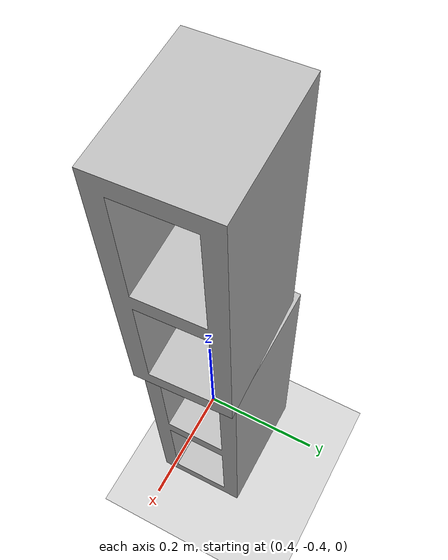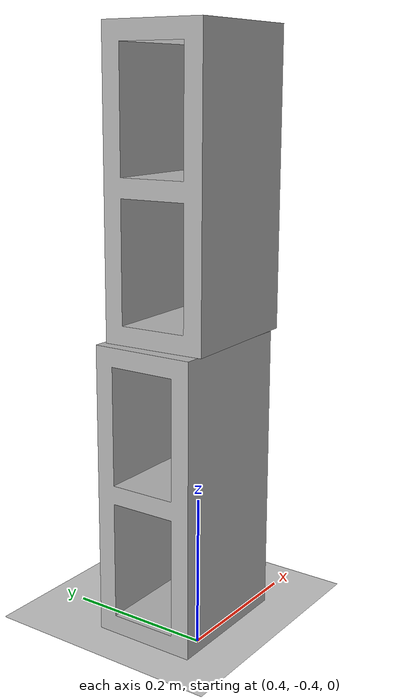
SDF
<sdf version="1.6">
 <world name="default">
  <light name="sun" type="directional">
   <pose>0 0 10 0 -0 0</pose>
   <diffuse>0.8 0.8 0.8 1</diffuse>
   <specular>0.2 0.2 0.2 1</specular>
   <attenuation>
    <range>1000</range>
    <constant>0.9</constant>
    <linear>0.01</linear>
    <quadratic>0.001</quadratic>
   </attenuation>
   <direction>-0.5 0.1 -0.9</direction>
  </light>
  <physics name="dart_1ms" default="1" type="dart">
   <max_step_size>0.001</max_step_size>
   <real_time_factor>1</real_time_factor>
   <real_time_update_rate>1000</real_time_update_rate>
   <dart><solver><solver_type>pgs</solver_type></solver></dart>
  </physics>
  <physics name="dart_2ms" default="0" type="dart">
   <max_step_size>0.002</max_step_size>
   <real_time_factor>1</real_time_factor>
   <real_time_update_rate>500</real_time_update_rate>
   <dart><solver><solver_type>pgs</solver_type></solver></dart>
  </physics>
  <physics name="dart_3ms" default="0" type="dart">
   <max_step_size>0.003</max_step_size>
   <real_time_factor>1</real_time_factor>
   <real_time_update_rate>333</real_time_update_rate>
   <dart><solver><solver_type>pgs</solver_type></solver></dart>
  </physics>
  <physics name="ode_1ms" default="0" type="ode">
   <max_step_size>0.001</max_step_size>
   <real_time_factor>1</real_time_factor>
   <real_time_update_rate>1000</real_time_update_rate>
  </physics>
  <physics name="ode_2ms" default="0" type="ode">
   <max_step_size>0.002</max_step_size>
   <real_time_factor>1</real_time_factor>
   <real_time_update_rate>500</real_time_update_rate>
  </physics>
  <physics name="ode_3ms" default="0" type="ode">
   <max_step_size>0.003</max_step_size>
   <real_time_factor>1</real_time_factor>
   <real_time_update_rate>333</real_time_update_rate>
  </physics>
  <model name="ground_plane">
   <static>1</static>
   <link name="link">
    <collision name="collision">
     <geometry><plane><normal>0 0 1</normal><size>100 100</size></plane></geometry>
     <surface>
      <contact><collide_bitmask>65535</collide_bitmask></contact>
      <friction><ode><mu>100</mu><mu2>50</mu2></ode></friction>
     </surface>
    </collision>
    <visual name="visual">
     <cast_shadows>0</cast_shadows>
     <geometry><plane><normal>0 0 1</normal><size>100 100</size></plane></geometry>
     <material>
      <script><uri>file://media/materials/scripts/gazebo.material</uri><name>Gazebo/Grey</name></script>
     </material>
    </visual>
   </link>
  </model>
  <gravity>0 0 -9.8</gravity>
  <magnetic_field>6e-06 2.3e-05 -4.2e-05</magnetic_field>
  <atmosphere type="adiabatic"/>
  <scene><ambient>0.4 0.4 0.4 1</ambient><background>0.7 0.7 0.7 1</background><shadows>1</shadows></scene>
  <spherical_coordinates>
   <surface_model>EARTH_WGS84</surface_model>
   <latitude_deg>0</latitude_deg>
   <longitude_deg>0</longitude_deg>
   <elevation>0</elevation>
   <heading_deg>0</heading_deg>
  </spherical_coordinates>
  <model name="cinder_block_2">
   <static>1</static>
   <link name="link">
    <inertial>
     <pose>0 0 0.071438 0 -0 0</pose>
     <mass>5</mass>
     <inertia>
      <ixx>0.06908</ixx>
      <ixy>0</ixy>
      <iyy>0.028705</iyy>
      <ixz>0</ixz>
      <iyz>0</iyz>
      <izz>0.073708</izz>
     </inertia>
    </inertial>
    <visual name="visual">
     <geometry><mesh><uri>model://cinder_block_2/meshes/cinder_block.dae</uri></mesh></geometry>
    </visual>
    <collision name="top">
     <pose>0 0 0.130175 0 -0 0</pose>
     <geometry><box><size>0.19368 0.396875 0.0254</size></box></geometry>
     <surface>
      <contact><ode><max_vel>0.1</max_vel><min_depth>0.001</min_depth></ode></contact>
      <friction><ode><mu>1</mu><mu2>1</mu2></ode></friction>
     </surface>
    </collision>
    <collision name="bottom">
     <pose>0 0 0.0127 0 -0 0</pose>
     <geometry><box><size>0.19368 0.396875 0.0254</size></box></geometry>
     <surface>
      <contact><ode><max_vel>0.1</max_vel><min_depth>0.001</min_depth></ode></contact>
      <friction><ode><mu>1</mu><mu2>1</mu2></ode></friction>
     </surface>
    </collision>
    <collision name="left">
     <pose>0 -0.185738 0.071438 0 -0 0</pose>
     <geometry><box><size>0.19368 0.0254 0.092075</size></box></geometry>
     <surface>
      <contact><ode><max_vel>0.1</max_vel><min_depth>0.001</min_depth></ode></contact>
      <friction><ode><mu>1</mu><mu2>1</mu2></ode></friction>
     </surface>
    </collision>
    <collision name="right">
     <pose>0 0.185738 0.071438 0 -0 0</pose>
     <geometry><box><size>0.19368 0.0254 0.092075</size></box></geometry>
     <surface>
      <contact><ode><max_vel>0.1</max_vel><min_depth>0.001</min_depth></ode></contact>
      <friction><ode><mu>1</mu><mu2>1</mu2></ode></friction>
     </surface>
    </collision>
    <collision name="middle">
     <pose>0 0 0.071438 0 -0 0</pose>
     <geometry><box><size>0.19368 0.0254 0.092075</size></box></geometry>
     <surface>
      <contact><ode><max_vel>0.1</max_vel><min_depth>0.001</min_depth></ode></contact>
      <friction><ode><mu>1</mu><mu2>1</mu2></ode></friction>
     </surface>
    </collision>
   </link>
   <pose>0.450121 -0.272449 0.198407 1.57077 8e-06 0.005404</pose>
  </model>
  <model name="cinder_block_2_0">
   <static>1</static>
   <link name="link">
    <inertial>
     <pose>0 0 0.071438 0 -0 0</pose>
     <mass>5</mass>
     <inertia>
      <ixx>0.06908</ixx>
      <ixy>0</ixy>
      <iyy>0.028705</iyy>
      <ixz>0</ixz>
      <iyz>0</iyz>
      <izz>0.073708</izz>
     </inertia>
    </inertial>
    <visual name="visual">
     <geometry><mesh><uri>model://cinder_block_2/meshes/cinder_block.dae</uri></mesh></geometry>
    </visual>
    <collision name="top">
     <pose>0 0 0.130175 0 -0 0</pose>
     <geometry><box><size>0.19368 0.396875 0.0254</size></box></geometry>
     <surface>
      <contact><ode><max_vel>0.1</max_vel><min_depth>0.001</min_depth></ode></contact>
      <friction><ode><mu>1</mu><mu2>1</mu2></ode></friction>
     </surface>
    </collision>
    <collision name="bottom">
     <pose>0 0 0.0127 0 -0 0</pose>
     <geometry><box><size>0.19368 0.396875 0.0254</size></box></geometry>
     <surface>
      <contact><ode><max_vel>0.1</max_vel><min_depth>0.001</min_depth></ode></contact>
      <friction><ode><mu>1</mu><mu2>1</mu2></ode></friction>
     </surface>
    </collision>
    <collision name="left">
     <pose>0 -0.185738 0.071438 0 -0 0</pose>
     <geometry><box><size>0.19368 0.0254 0.092075</size></box></geometry>
     <surface>
      <contact><ode><max_vel>0.1</max_vel><min_depth>0.001</min_depth></ode></contact>
      <friction><ode><mu>1</mu><mu2>1</mu2></ode></friction>
     </surface>
    </collision>
    <collision name="right">
     <pose>0 0.185738 0.071438 0 -0 0</pose>
     <geometry><box><size>0.19368 0.0254 0.092075</size></box></geometry>
     <surface>
      <contact><ode><max_vel>0.1</max_vel><min_depth>0.001</min_depth></ode></contact>
      <friction><ode><mu>1</mu><mu2>1</mu2></ode></friction>
     </surface>
    </collision>
    <collision name="middle">
     <pose>0 0 0.071438 0 -0 0</pose>
     <geometry><box><size>0.19368 0.0254 0.092075</size></box></geometry>
     <surface>
      <contact><ode><max_vel>0.1</max_vel><min_depth>0.001</min_depth></ode></contact>
      <friction><ode><mu>1</mu><mu2>1</mu2></ode></friction>
     </surface>
    </collision>
   </link>
   <pose>0.464771 -0.273826 0.595361 1.57083 0.00104 0.042833</pose>
  </model>
 </world>
</sdf>
